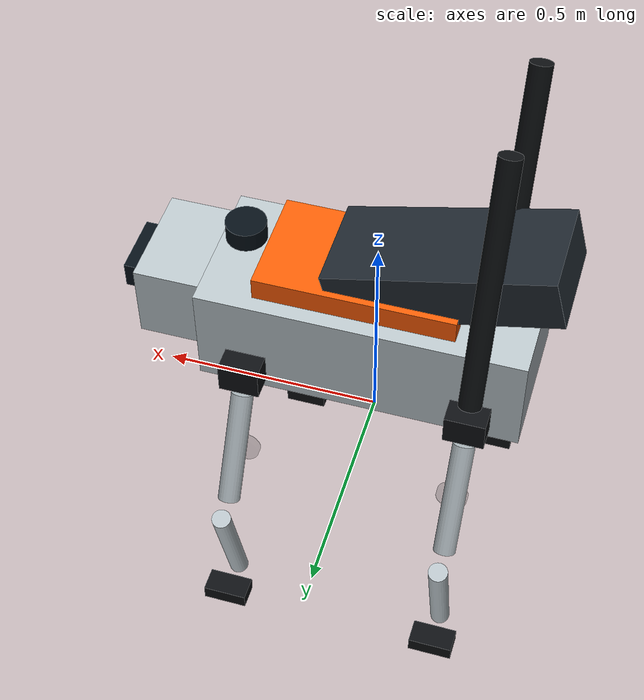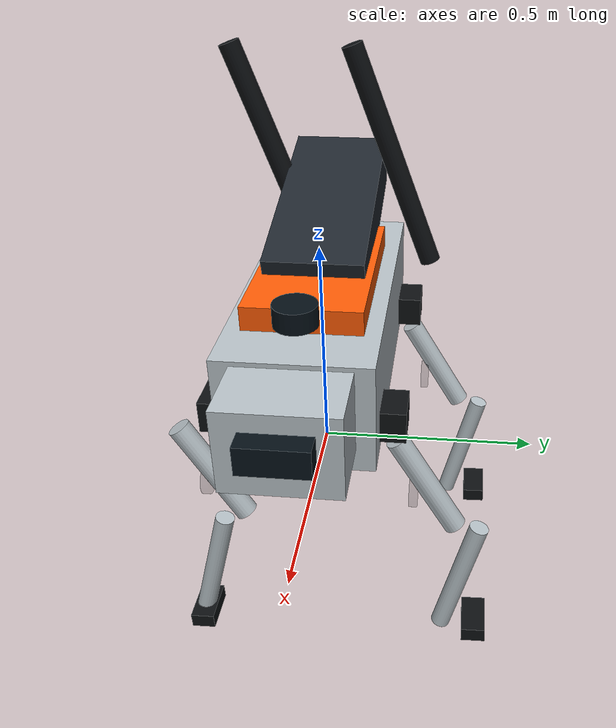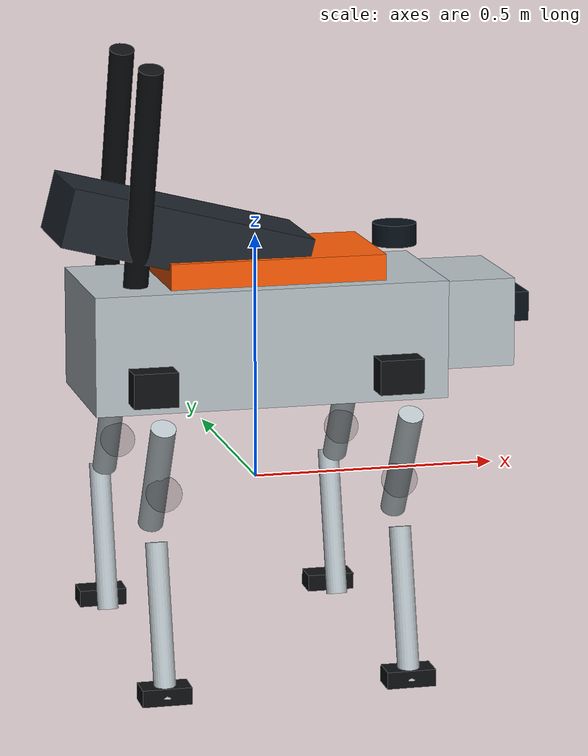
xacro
<?xml version="1.0"?>
<robot name="go2_caddie" xmlns:xacro="http://www.ros.org/wiki/xacro">
  <xacro:arg name="use_gazebo" default="true"/>

  <xacro:property name="body_length" value="0.72"/>
  <xacro:property name="body_width" value="0.32"/>
  <xacro:property name="body_height" value="0.24"/>
  <xacro:property name="body_mass" value="15.0"/>
  <xacro:property name="wheel_radius" value="0.035"/>
  <xacro:property name="wheel_width" value="0.018"/>

  <xacro:macro name="box_inertial" params="mass x y z">
    <inertial>
      <mass value="${mass}"/>
      <origin xyz="0 0 0"/>
      <inertia
        ixx="${mass * (y*y + z*z) / 12.0}"
        ixy="0.0"
        ixz="0.0"
        iyy="${mass * (x*x + z*z) / 12.0}"
        iyz="0.0"
        izz="${mass * (x*x + y*y) / 12.0}"/>
    </inertial>
  </xacro:macro>

  <xacro:macro name="cylinder_inertial" params="mass radius length">
    <inertial>
      <mass value="${mass}"/>
      <origin xyz="0 0 0"/>
      <inertia
        ixx="${mass * (3.0 * radius * radius + length * length) / 12.0}"
        ixy="0.0"
        ixz="0.0"
        iyy="${mass * (3.0 * radius * radius + length * length) / 12.0}"
        iyz="0.0"
        izz="${0.5 * mass * radius * radius}"/>
    </inertial>
  </xacro:macro>

  <material name="go2_silver">
    <color rgba="0.72 0.76 0.78 1.0"/>
  </material>
  <material name="go2_dark">
    <color rgba="0.05 0.06 0.07 1.0"/>
  </material>
  <material name="wso2_orange">
    <color rgba="1.0 0.36 0.02 1.0"/>
  </material>
  <material name="sensor_glass">
    <color rgba="0.02 0.06 0.09 0.92"/>
  </material>
  <material name="bag_fabric">
    <color rgba="0.12 0.15 0.18 1.0"/>
  </material>
  <material name="hidden_drive">
    <color rgba="0.02 0.02 0.02 0.12"/>
  </material>

  <link name="base_footprint"/>

  <link name="base_link">
    <xacro:box_inertial mass="${body_mass}" x="${body_length}" y="${body_width}" z="${body_height}"/>
    <visual>
      <origin xyz="0 0 0.30"/>
      <geometry>
        <box size="${body_length} ${body_width} ${body_height}"/>
      </geometry>
      <material name="go2_silver"/>
    </visual>
    <visual>
      <origin xyz="0.02 0 0.44"/>
      <geometry>
        <box size="0.44 0.25 0.065"/>
      </geometry>
      <material name="wso2_orange"/>
    </visual>
    <collision>
      <origin xyz="0 0 0.30"/>
      <geometry>
        <box size="${body_length} ${body_width} ${body_height}"/>
      </geometry>
    </collision>
  </link>

  <joint name="base_footprint_to_base_link" type="fixed">
    <parent link="base_footprint"/>
    <child link="base_link"/>
    <origin xyz="0 0 0"/>
  </joint>

  <link name="head_link">
    <xacro:box_inertial mass="1.0" x="0.16" y="0.24" z="0.18"/>
    <visual>
      <origin xyz="0 0 0"/>
      <geometry>
        <box size="0.16 0.24 0.18"/>
      </geometry>
      <material name="go2_silver"/>
    </visual>
    <collision>
      <origin xyz="0 0 0"/>
      <geometry>
        <box size="0.16 0.24 0.18"/>
      </geometry>
    </collision>
  </link>

  <joint name="base_to_head" type="fixed">
    <parent link="base_link"/>
    <child link="head_link"/>
    <origin xyz="0.43 0 0.32"/>
  </joint>

  <link name="bag_rack_link">
    <xacro:box_inertial mass="2.0" x="0.45" y="0.22" z="0.12"/>
    <visual>
      <origin xyz="-0.08 0 0.02" rpy="0 0.25 0"/>
      <geometry>
        <box size="0.50 0.22 0.12"/>
      </geometry>
      <material name="bag_fabric"/>
    </visual>
    <visual>
      <origin xyz="-0.18 0.14 0.13" rpy="0.35 0.0 0"/>
      <geometry>
        <cylinder radius="0.025" length="0.55"/>
      </geometry>
      <material name="go2_dark"/>
    </visual>
    <visual>
      <origin xyz="-0.18 -0.14 0.13" rpy="0.35 0.0 0"/>
      <geometry>
        <cylinder radius="0.025" length="0.55"/>
      </geometry>
      <material name="go2_dark"/>
    </visual>
  </link>

  <joint name="base_to_bag_rack" type="fixed">
    <parent link="base_link"/>
    <child link="bag_rack_link"/>
    <origin xyz="-0.08 0 0.49"/>
  </joint>

  <xacro:macro name="go2_leg" params="name x y hip_sign">
    <link name="${name}_hip_link">
      <xacro:box_inertial mass="0.5" x="0.09" y="0.07" z="0.07"/>
      <visual>
        <geometry>
          <box size="0.09 0.07 0.07"/>
        </geometry>
        <material name="go2_dark"/>
      </visual>
    </link>
    <joint name="${name}_hip_fixed" type="fixed">
      <parent link="base_link"/>
      <child link="${name}_hip_link"/>
      <origin xyz="${x} ${y} 0.24"/>
    </joint>

    <link name="${name}_upper_leg_link">
      <xacro:cylinder_inertial mass="0.55" radius="0.025" length="0.26"/>
      <visual>
        <origin xyz="0 0 -0.13" rpy="0.35 0 0"/>
        <geometry>
          <cylinder radius="0.025" length="0.26"/>
        </geometry>
        <material name="go2_silver"/>
      </visual>
      <collision>
        <origin xyz="0 0 -0.13" rpy="0.35 0 0"/>
        <geometry>
          <cylinder radius="0.025" length="0.26"/>
        </geometry>
      </collision>
    </link>
    <joint name="${name}_upper_leg_fixed" type="fixed">
      <parent link="${name}_hip_link"/>
      <child link="${name}_upper_leg_link"/>
      <origin xyz="0 ${0.055 * hip_sign} -0.045" rpy="0.18 0 0"/>
    </joint>

    <link name="${name}_lower_leg_link">
      <xacro:cylinder_inertial mass="0.45" radius="0.022" length="0.31"/>
      <visual>
        <origin xyz="0 0 -0.15" rpy="-0.28 0 0"/>
        <geometry>
          <cylinder radius="0.022" length="0.31"/>
        </geometry>
        <material name="go2_silver"/>
      </visual>
      <collision>
        <origin xyz="0 0 -0.15" rpy="-0.28 0 0"/>
        <geometry>
          <cylinder radius="0.022" length="0.31"/>
        </geometry>
      </collision>
    </link>
    <joint name="${name}_lower_leg_fixed" type="fixed">
      <parent link="${name}_upper_leg_link"/>
      <child link="${name}_lower_leg_link"/>
      <origin xyz="0 ${0.055 * hip_sign} -0.26" rpy="-0.15 0 0"/>
    </joint>

    <link name="${name}_foot_link">
      <xacro:box_inertial mass="0.18" x="0.10" y="0.055" z="0.035"/>
      <visual>
        <origin xyz="0 0 0"/>
        <geometry>
          <box size="0.10 0.055 0.035"/>
        </geometry>
        <material name="go2_dark"/>
      </visual>
      <collision>
        <origin xyz="0 0 0"/>
        <geometry>
          <box size="0.10 0.055 0.035"/>
        </geometry>
      </collision>
    </link>
    <joint name="${name}_foot_fixed" type="fixed">
      <parent link="${name}_lower_leg_link"/>
      <child link="${name}_foot_link"/>
      <origin xyz="0 ${0.035 * hip_sign} -0.29"/>
    </joint>
  </xacro:macro>

  <xacro:go2_leg name="front_left" x="0.25" y="0.18" hip_sign="1"/>
  <xacro:go2_leg name="front_right" x="0.25" y="-0.18" hip_sign="-1"/>
  <xacro:go2_leg name="rear_left" x="-0.25" y="0.18" hip_sign="1"/>
  <xacro:go2_leg name="rear_right" x="-0.25" y="-0.18" hip_sign="-1"/>

  <xacro:macro name="drive_wheel" params="name x y side">
    <link name="${name}_wheel_link">
      <xacro:cylinder_inertial mass="0.04" radius="${wheel_radius}" length="${wheel_width}"/>
      <visual>
        <origin rpy="${pi / 2.0} 0 0"/>
        <geometry>
          <cylinder radius="${wheel_radius}" length="${wheel_width}"/>
        </geometry>
        <material name="hidden_drive"/>
      </visual>
      <collision>
        <origin rpy="${pi / 2.0} 0 0"/>
        <geometry>
          <cylinder radius="${wheel_radius}" length="${wheel_width}"/>
        </geometry>
      </collision>
    </link>
    <joint name="${name}_wheel_joint" type="continuous">
      <parent link="base_link"/>
      <child link="${name}_wheel_link"/>
      <origin xyz="${x} ${y} ${wheel_radius}" rpy="0 0 0"/>
      <axis xyz="0 1 0"/>
      <dynamics damping="0.1" friction="0.0"/>
    </joint>
  </xacro:macro>

  <xacro:drive_wheel name="left_front" x="0.24" y="0.23" side="1"/>
  <xacro:drive_wheel name="left_rear" x="-0.24" y="0.23" side="1"/>
  <xacro:drive_wheel name="right_front" x="0.24" y="-0.23" side="-1"/>
  <xacro:drive_wheel name="right_rear" x="-0.24" y="-0.23" side="-1"/>

  <link name="lidar_link">
    <xacro:cylinder_inertial mass="0.2" radius="0.045" length="0.045"/>
    <visual>
      <origin rpy="0 0 0"/>
      <geometry>
        <cylinder radius="0.045" length="0.045"/>
      </geometry>
      <material name="sensor_glass"/>
    </visual>
  </link>
  <joint name="base_to_lidar" type="fixed">
    <parent link="base_link"/>
    <child link="lidar_link"/>
    <origin xyz="0.29 0 0.49"/>
  </joint>

  <link name="camera_link">
    <xacro:box_inertial mass="0.25" x="0.08" y="0.14" z="0.06"/>
    <visual>
      <origin xyz="0 0 0"/>
      <geometry>
        <box size="0.08 0.14 0.06"/>
      </geometry>
      <material name="sensor_glass"/>
    </visual>
  </link>
  <joint name="head_to_camera" type="fixed">
    <parent link="head_link"/>
    <child link="camera_link"/>
    <origin xyz="0.085 0 0.02"/>
  </joint>

  <link name="camera_rgb_optical_frame"/>
  <joint name="camera_to_rgb_optical" type="fixed">
    <parent link="camera_link"/>
    <child link="camera_rgb_optical_frame"/>
    <origin xyz="0.045 0 0" rpy="${-pi / 2.0} 0 ${-pi / 2.0}"/>
  </joint>

  <link name="camera_depth_optical_frame"/>
  <joint name="camera_to_depth_optical" type="fixed">
    <parent link="camera_link"/>
    <child link="camera_depth_optical_frame"/>
    <origin xyz="0.045 0 0" rpy="${-pi / 2.0} 0 ${-pi / 2.0}"/>
  </joint>

  <link name="imu_link">
    <xacro:box_inertial mass="0.05" x="0.04" y="0.04" z="0.02"/>
    <visual>
      <geometry>
        <box size="0.04 0.04 0.02"/>
      </geometry>
      <material name="go2_dark"/>
    </visual>
  </link>
  <joint name="base_to_imu" type="fixed">
    <parent link="base_link"/>
    <child link="imu_link"/>
    <origin xyz="0 0 0.43"/>
  </joint>

  <gazebo reference="base_link">
    <material>Gazebo/Silver</material>
  </gazebo>
  <gazebo reference="bag_rack_link">
    <material>Gazebo/Black</material>
  </gazebo>

  <xacro:if value="$(arg use_gazebo)">
    <gazebo>
      <plugin filename="gz-sim-diff-drive-system" name="gz::sim::systems::DiffDrive">
        <left_joint>left_front_wheel_joint</left_joint>
        <left_joint>left_rear_wheel_joint</left_joint>
        <right_joint>right_front_wheel_joint</right_joint>
        <right_joint>right_rear_wheel_joint</right_joint>
        <wheel_separation>0.46</wheel_separation>
        <wheel_radius>${wheel_radius}</wheel_radius>
        <odom_publish_frequency>50</odom_publish_frequency>
        <topic>/cmd_vel</topic>
        <odom_topic>/odom</odom_topic>
        <tf_topic>/tf</tf_topic>
        <frame_id>odom</frame_id>
        <child_frame_id>base_footprint</child_frame_id>
        <max_linear_acceleration>0.8</max_linear_acceleration>
        <min_linear_acceleration>-0.8</min_linear_acceleration>
        <max_angular_acceleration>1.6</max_angular_acceleration>
        <min_angular_acceleration>-1.6</min_angular_acceleration>
      </plugin>
    </gazebo>

    <gazebo reference="lidar_link">
      <sensor name="go2_front_lidar" type="gpu_lidar">
        <topic>/scan</topic>
        <update_rate>15</update_rate>
        <always_on>true</always_on>
        <visualize>true</visualize>
        <lidar>
          <scan>
            <horizontal>
              <samples>720</samples>
              <resolution>1</resolution>
              <min_angle>-3.14159265</min_angle>
              <max_angle>3.14159265</max_angle>
            </horizontal>
          </scan>
          <range>
            <min>0.12</min>
            <max>18.0</max>
            <resolution>0.02</resolution>
          </range>
          <noise>
            <type>gaussian</type>
            <mean>0.0</mean>
            <stddev>0.01</stddev>
          </noise>
        </lidar>
      </sensor>
    </gazebo>

    <gazebo reference="camera_link">
      <sensor name="go2_rgbd_camera" type="rgbd_camera">
        <topic>/camera</topic>
        <update_rate>20</update_rate>
        <always_on>true</always_on>
        <visualize>true</visualize>
        <camera>
          <horizontal_fov>1.047</horizontal_fov>
          <image>
            <width>640</width>
            <height>480</height>
            <format>R8G8B8</format>
          </image>
          <clip>
            <near>0.05</near>
            <far>12.0</far>
          </clip>
        </camera>
      </sensor>
    </gazebo>

    <gazebo reference="imu_link">
      <sensor name="go2_imu" type="imu">
        <topic>/imu</topic>
        <update_rate>100</update_rate>
        <always_on>true</always_on>
      </sensor>
    </gazebo>
  </xacro:if>
</robot>
